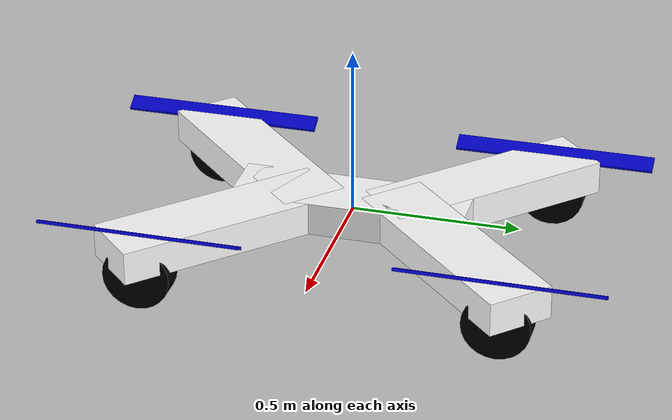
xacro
<?xml version="1.0"?>
<robot xmlns:xacro="http://www.ros.org/wiki/xacro" name="physics">

<!-- Константы: цвета-->
<material name="blue">
    <color rgba="0 0 0.8 1"/>
  </material>
  <material name="black">
    <color rgba="0 0 0 1"/>
  </material>
  <material name="white">
    <color rgba="1 1 1 1"/>
  </material>

<!-- Константы: параметры квадрокоптера -->
<xacro:property name="base_width" value="0.2"/>
<xacro:property name="base_length" value="0.7"/>
<xacro:property name="base_high" value="0.1"/>

<xacro:property name="xyz_base_link" value="0 0 0"/>

<xacro:property name="propeller_width" value="0.05"/>
<xacro:property name="propeller_length" value="0.6"/>
<xacro:property name="propeller_high" value="0.01"/>

<xacro:property name="width_wheel" value="0.08"/>
<xacro:property name="radius_wheel" value="0.1"/>

<!-- Реализация класса: Крыло-->
<xacro:macro name="wing" params="prefix rpy size">
  <link name="wing_${prefix}">
    <visual>
    <origin rpy="${rpy}" />
        <geometry>
            <box size="${size}"/>
        </geometry>
        <material name="white"/>
    </visual>
    <collision>
        <geometry>
            <box size="${size}"/>
        </geometry>
    </collision>
    <inertial>
      <mass value="0.1"/>
      <inertia ixx="1.0" ixy="0.0" ixz="0.0" iyy="1.0" iyz="0.0" izz="1.0"/>
    </inertial>
  </link>
</xacro:macro>

<!-- Реализация класса: Крепёж крыла -->
<xacro:macro name="wing_to_base" params="prefix xyz">
  <joint name="wing_${prefix}_joint" type="fixed">
    <parent link="base_link"/>
    <child link="wing_${prefix}"/>
    <origin xyz="${xyz}"/>
  </joint>
</xacro:macro>

<!-- Реализация класса: Пропеллер -->
<xacro:macro name="propeller" params="prefix rpy size">
  <link name="propeller_${prefix}">
    <visual>
    <origin rpy="${rpy}"/>
        <geometry>
            <box size="${size}"/>
        </geometry>
        <material name="blue"/>
    </visual>
    <collision>
        <geometry>
            <box size="${size}"/>
        </geometry>
    </collision>
    <inertial>
      <mass value="0.01"/>
      <inertia ixx="1.0" ixy="0.0" ixz="0.0" iyy="1.0" iyz="0.0" izz="1.0"/>
    </inertial>
  </link>
</xacro:macro>

<!-- Реализация класса: Крепёж пропеллера -->
<xacro:macro name="propeller_to_wing" params="prefix xyz">
  <joint name="propeller_${prefix}_joint" type="continuous">
    <parent link="wing_${prefix}"/>
    <child link="propeller_${prefix}"/>
    <origin xyz="${xyz}"/>
    <axis xyz="0 0 1"/>
  </joint>
</xacro:macro>

<!-- Реализация класса: Колесо -->
<xacro:macro name="wheel" params="prefix length radius">
  <link name="wheel_${prefix}">
    <visual>
       <origin rpy="0 ${3.14/2} 0"/>
       <geometry>
           <cylinder length="${length}" radius="${radius}"/>
       </geometry>
       <material name="black"/>
    </visual>
    <collision>
        <geometry>
            <cylinder length="${length}" radius="${radius}"/>
        </geometry>
    </collision>
    <inertial>
      <mass value="0.01"/>
      <inertia ixx="1.0" ixy="0.0" ixz="0.0" iyy="1.0" iyz="0.0" izz="1.0"/>
    </inertial>
  </link>
</xacro:macro>

<!-- Реализация класса: Крепёж Колеса -->
<xacro:macro name="wheel_to_wing" params="prefix xyz">
  <joint name="wheel_${prefix}_joint" type="continuous">
    <parent link="wing_${prefix}"/>
    <child link="wheel_${prefix}"/>
    <origin xyz="${xyz}"/>
    <axis xyz="0 0 1"/>
  </joint>
</xacro:macro>

<!-- Создание объекта: Основание -->
<link name="base_link">
  <visual>
  <origin rpy="0 0 0" xyz="${xyz_base_link}"/>
     <geometry>
        <box size="${base_width} ${base_length} ${base_high}"/>
      </geometry>
      <material name="white"/>
  </visual>
  <collision>
      <geometry>
        <box size="${base_width} ${base_length} ${base_high}"/>
      </geometry>
    </collision>
    <inertial>
      <mass value="2"/>
      <inertia ixx="1.0" ixy="0.0" ixz="0.0" iyy="1.0" iyz="0.0" izz="1.0"/>
    </inertial>
</link>

<!-- Создание объектов и их свойств: Крыло  -->
<xacro:wing prefix="forward_right" rpy="0 0 ${3.14/4}" size="${base_width} ${base_length} ${base_high}"/>
<xacro:wing prefix="forward_left" rpy="0 0 ${7*3.14/4}" size="${base_width} ${base_length} ${base_high}"/>
<xacro:wing prefix="backward_right" rpy="0 0 ${3*3.14/4}" size="${base_width} ${base_length} ${base_high}"/>
<xacro:wing prefix="backward_left" rpy="0 0 ${5*3.14/4}" size="${base_width} ${base_length} ${base_high}"/>

<xacro:wing_to_base prefix="forward_right" xyz="${-base_width} ${base_length/2} 0"/>
<xacro:wing_to_base prefix="forward_left" xyz="${base_width} ${base_length/2} 0"/>
<xacro:wing_to_base prefix="backward_right" xyz="${-base_width} ${-base_length/2} 0"/>
<xacro:wing_to_base prefix="backward_left" xyz="${base_width} ${-base_length/2} 0"/>

<!-- Создание объектов и их свойств: Пропеллер  -->
<xacro:propeller prefix="forward_right" rpy="0 ${3.14/6} 0" size="${propeller_width} ${propeller_length} ${propeller_high}"/>
<xacro:propeller prefix="forward_left" rpy="0 ${5*3.14/6} 0" size="${propeller_width} ${propeller_length} ${propeller_high}"/>
<xacro:propeller prefix="backward_right" rpy="0 ${3.14/6} 0" size="${propeller_width} ${propeller_length} ${propeller_high}"/>
<xacro:propeller prefix="backward_left" rpy="0 ${5*3.14/6} 0" size="${propeller_width} ${propeller_length} ${propeller_high}"/>

<xacro:propeller_to_wing prefix="forward_right" xyz="${-base_width} ${base_length/4} ${base_high/2}"/>
<xacro:propeller_to_wing prefix="forward_left" xyz="${base_width} ${base_length/4} ${base_high/2}"/>
<xacro:propeller_to_wing prefix="backward_right" xyz="${-base_width} ${-base_length/4} ${base_high/2}"/>
<xacro:propeller_to_wing prefix="backward_left" xyz="${base_width} ${-base_length/4} ${base_high/2}"/>

<!-- Создание объектов и их свойств: Колесо  -->
<xacro:wheel prefix="forward_right" length="${width_wheel}" radius="${radius_wheel}"/>
<xacro:wheel prefix="forward_left" length="${width_wheel}" radius="${radius_wheel}"/>
<xacro:wheel prefix="backward_right" length="${width_wheel}" radius="${radius_wheel}"/>
<xacro:wheel prefix="backward_left" length="${width_wheel}" radius="${radius_wheel}"/>

<xacro:wheel_to_wing prefix="forward_right" xyz="${-base_width} ${base_length/4} ${-0.02 +(-base_high/2)}"/>
<xacro:wheel_to_wing prefix="forward_left" xyz="${base_width} ${base_length/4} ${-0.02 +(-base_high/2)}"/>
<xacro:wheel_to_wing prefix="backward_right" xyz="${-base_width} ${-base_length/4} ${-0.02 +(-base_high/2)}"/>
<xacro:wheel_to_wing prefix="backward_left" xyz="${base_width} ${-base_length/4} ${-0.02 +(-base_high/2)}"/>

</robot>
